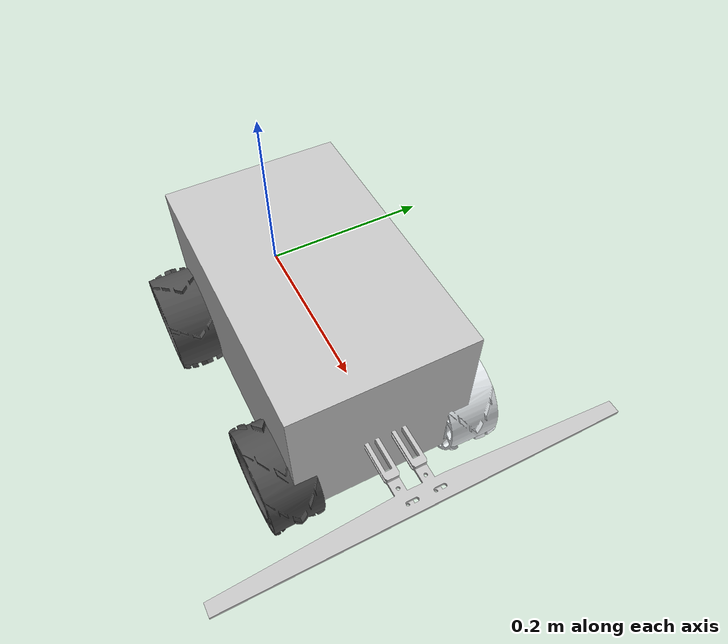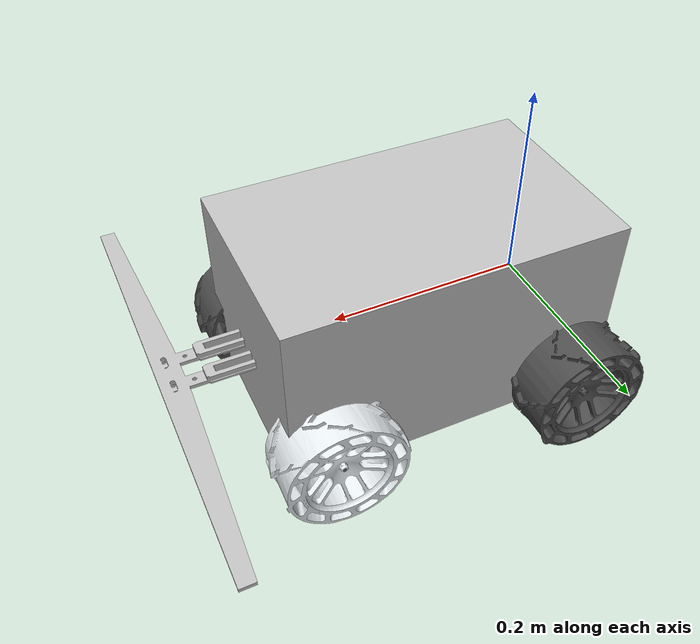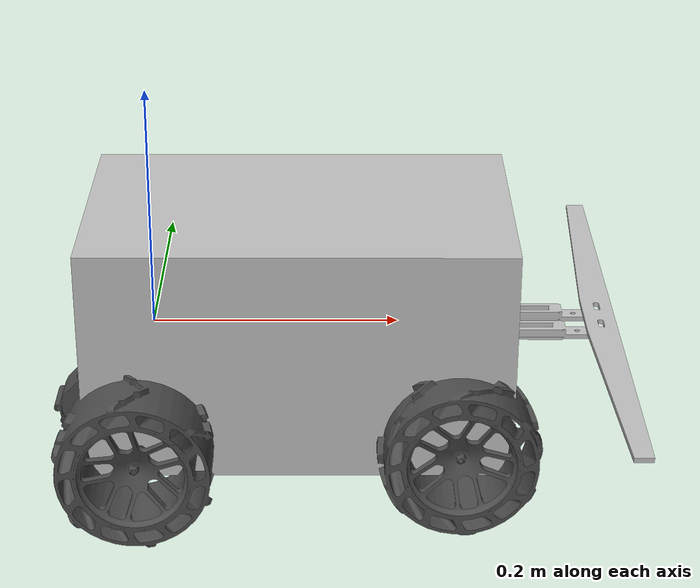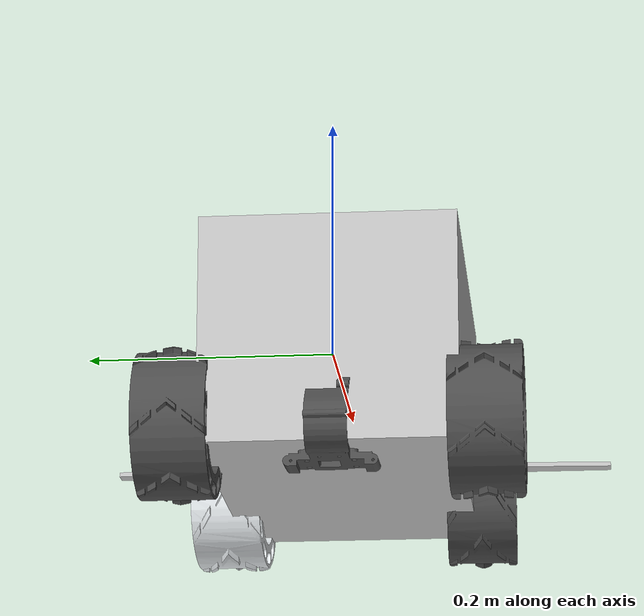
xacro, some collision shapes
<?xml version="1.0" encoding="utf-8"?>

<robot name="perse" xmlns:xacro="http://www.ros.org/wiki/xacro">

  <!-- Import all Gazebo-customization elements, including Gazebo colors -->
  <xacro:include filename="$(find perse_simulation)/models/Perse/urdf/perse.gazebo" />

  <!-- Import Rviz colors -->
  <xacro:include filename="$(find perse_simulation)/models/Perse/urdf/materials.xacro" />

  <!-- Code exported from SolidWorks -->
  <xacro:include filename="$(find perse_simulation)/models/Perse/urdf/perse.urdf" />

  <!-- Definition of motor -->
  <xacro:include filename="$(find perse_simulation)/models/Perse/urdf/motor.xacro"/>

  <xacro:include filename="$(find perse_simulation)/models/Perse/urdf/colors.xacro"/>

  <xacro:motor joint_name="wheel_back_left" gear_rate="1"/>
  <xacro:motor joint_name="wheel_back_right" gear_rate="1"/>
  <xacro:motor joint_name="wheel_front_left" gear_rate="1"/>
  <xacro:motor joint_name="wheel_front_right" gear_rate="1"/>

</robot>

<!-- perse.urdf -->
<robot name="perse">
  <link name="base_link">
    <inertial>
      <origin xyz="0.168983151004299 0.00691298433678258 0.000423190257476187" rpy="0 0 0" />
      <mass value="52.998755" />
      <inertia ixx="0.087169" ixy="0.001498" ixz="-2.541188e-6" iyy="0.593683" iyz="-1.130833e-10" izz="0.508637" />
    </inertial>
    <visual>
      <origin xyz="0 0 0" rpy="0 0 0" />
      <geometry>
        <mesh filename="file://$(find perse_simulation)/models/Perse/meshes/base_link.STL" />
      </geometry>
      <material name="">
        <color rgba="0.752941176470588 0.752941176470588 0.752941176470588 1" />
      </material>
    </visual>
    <collision>
      <origin xyz="0.12 0 0.01" rpy="0 0 0" />
      <geometry>
        <box size="0.34 0.21 0.19" />
      </geometry>
    </collision>
  </link>
  <link name="chasis_link">
    <inertial>
      <origin xyz="0.00923560336290369 -0.000156556443598481 -0.0793512912170262" rpy="0 0 0" />
      <mass value="68.721663" />
      <inertia ixx="0.029306" ixy="-5.110731e-5" ixz="0.003271" iyy="0.101034" iyz="5.112802e-5" izz="0.11519" />
    </inertial>
    <visual>
      <origin xyz="0 0 0" rpy="0 0 0" />
      <geometry>
        <mesh filename="file://$(find perse_simulation)/models/Perse/meshes/chasis_link.STL" />
      </geometry>
      <material name="">
        <color rgba="0.298039215686275 0.298039215686275 0.298039215686275 1" />
      </material>
    </visual>
  </link>
  <joint name="chasis_link" type="fixed">
    <origin xyz="0.11815 0 0.0167" rpy="0 0 0" />
    <parent link="base_link" />
    <child link="chasis_link" />
    <axis xyz="0 0 0" />
  </joint>
  <link name="wheel_front_left_link">
    <inertial>
      <origin xyz="-0.000671354037465849 -0.0288209896245741 -7.0635324950219E-09" rpy="0 0 0" />
      <mass value="44.780784" />
      <!-- Inertia values in scientific notation -->
      <inertia ixx="0.063252" ixy="8.844e-4" ixz="-1.1268e-8" iyy="0.101232" iyz="-3.6e-9" izz="0.063252" />
    </inertial>
    <visual>
      <origin xyz="0 0 0" rpy="0 0 0" />
      <geometry>
        <mesh filename="file://$(find perse_simulation)/models/Perse/meshes/wheel_front_left_link.STL" />
      </geometry>
      <material name="">
        <color rgba="0.898039215686275 0.917647058823529 0.929411764705882 1" />
      </material>
    </visual>
    <collision> <!--Changes colision blocks to a 0.06m cylinder-->
      <origin xyz="0 -0.03 0" rpy="1.5708 0 0" />
      <geometry>
        <cylinder length="0.06" radius="0.06"/>
      </geometry>
    </collision>
  </link>
  <joint name="wheel_front_left_joint" type="continuous">
    <origin xyz="0.12923 0.14061 -0.073983" rpy="0 0 0" /> <!-- Wheel with no inclination -->
    <parent link="chasis_link" />
    <child link="wheel_front_left_link" />
    <axis xyz="0 1 0" />
    <limit effort="20" velocity="100" />
    <dynamics damping="0.2" friction="0.01" />
  </joint>
  <link name="wheel_front_right_link">
    <inertial>
      <origin xyz="-0.000680674768011202 0.0288203993742683 -3.77309268551063E-09" rpy="0 0 0" />
      <mass value="44.779578" />
      <inertia ixx="0.063252" ixy="8.844e-4" ixz="-1.1268e-8" iyy="0.101232" iyz="-3.6e-9" izz="0.063252" />
    </inertial>
    <visual>
      <origin xyz="0 0 0" rpy="0 0 0" />
      <geometry>
        <mesh filename="file://$(find perse_simulation)/models/Perse/meshes/wheel_front_right_link.STL" />
      </geometry>
      <material name="">
        <color rgba="0.298039215686275 0.298039215686275 0.298039215686275 1" />
      </material>
    </visual>
    <collision> <!--Changes colision blocks to a 0.06m cylinder-->
      <origin xyz="0 0.03 0" rpy="1.5708 0 0" />
      <geometry>
        <cylinder length="0.06" radius="0.06"/>
      </geometry>
    </collision>
  </link>
  <joint name="wheel_front_right_joint" type="continuous">
    <origin xyz="0.12924 -0.14061 -0.073979" rpy="0 0 0" />
    <parent link="chasis_link" />
    <child link="wheel_front_right_link" />
    <axis xyz="0 1 0" />
    <limit effort="20" velocity="100" />
    <dynamics damping="0.2" friction="0.01" />
  </joint>
  <link name="wheel_back_right_link">
    <inertial>
      <origin xyz="-1.01586713260188E-09 0.0288209096412485 -2.07344974523238E-11" rpy="0 0 0" />
      <mass value="44.493944" />
      <inertia ixx="0.063252" ixy="8.844e-4" ixz="-1.1268e-8" iyy="0.101232" iyz="-3.6e-9" izz="0.063252" />
    </inertial>
    <visual>
      <origin xyz="0 0 0" rpy="0 0 0" />
      <geometry>
        <mesh filename="file://$(find perse_simulation)/models/Perse/meshes/wheel_back_right_link.STL" />
      </geometry>
      <material name="">
        <color rgba="0.298039215686275 0.298039215686275 0.298039215686275 1" />
      </material>
    </visual>
        <collision> <!--Changes colision blocks to a 0.06m cylinder-->
      <origin xyz="0 0.03 0" rpy="1.5708 0 0" />
      <geometry>
        <cylinder length="0.06" radius="0.06"/>
      </geometry>
    </collision>
  </link>
  <joint name="wheel_back_right_joint" type="continuous">
    <origin xyz="-0.12465 -0.15522 -0.075807" rpy="0 0 0" />
    <parent link="chasis_link" />
    <child link="wheel_back_right_link" />
    <axis xyz="0 1 0" />
    <limit effort="20" velocity="100" />
    <dynamics damping="0.2" friction="0.01" />
  </joint>
  <link name="wheel_back_left_link">
    <inertial>
      <origin xyz="8.13761188642181E-10 -0.0288212689411408 -4.82949791269505E-12" rpy="0 0 0" />
      <mass value="44.495096" />
      <inertia ixx="0.063252" ixy="8.844e-4" ixz="-1.1268e-8" iyy="0.101232" iyz="-3.6e-9" izz="0.063252" />
    </inertial>
    <visual>
      <origin xyz="0 0 0" rpy="0 0 0" />
      <geometry>
        <mesh filename="file://$(find perse_simulation)/models/Perse/meshes/wheel_back_left_link.STL" />
      </geometry>
      <material name="">
        <color rgba="0.298039215686275 0.298039215686275 0.298039215686275 1" />
      </material>
    </visual>
    <collision> <!--Changes colision blocks to a 0.06m cylinder-->
      <origin xyz="0 -0.03 0" rpy="1.5708 0 0" />
      <geometry>
        <cylinder length="0.06" radius="0.06"/>
      </geometry>
    </collision>
  </link>
  <joint name="wheel_back_left_joint" type="continuous">
    <origin xyz="-0.12391 0.15579 -0.075449" rpy="0 0 0" />
    <parent link="chasis_link" />
    <child link="wheel_back_left_link" />
    <axis xyz="0 1 0" />
    <limit effort="20" velocity="100" />
    <dynamics damping="0.2" friction="0.01" />
  </joint>
  <link name="bumper_link">
    <inertial>
      <origin xyz="-0.0197983251755962 -0.00205538293640049 -0.0030788567492823" rpy="0 0 0" />
      <mass value="11.13897" />
      <inertia ixx="0.095148" ixy="1.512861e-8" ixz="8.69104e-5" iyy="0.004666" iyz="6.197511e-10" izz="0.099741" />
    </inertial>
    <visual>
      <origin xyz="0 0 0" rpy="0 0 0" />
      <geometry>
        <mesh filename="file://$(find perse_simulation)/models/Perse/meshes/bumper_link.STL" />
      </geometry>
      <material name="">
        <color rgba="0.752941176470588 0.752941176470588 0.752941176470588 1" />
      </material>
    </visual>
    <collision>
      <origin xyz="0.005 0 -0.002" rpy="0 0 0" />
      <geometry>
        <box size="0.015 0.46 0.0038" />
      </geometry>
    </collision>
  </link>
  <joint name="bumper_joint" type="prismatic">
    <origin xyz="0.36665 0.0045747 0.0029" rpy="0 0 0" />
    <parent link="base_link" />
    <child link="bumper_link" />
    <axis xyz="-1 0 0" />
    <limit lower="0" upper="0.1" effort="0" velocity="0" />
  </joint>
  <link name="cover_link">
    <inertial>
      <origin xyz="-0.0174932276719462 -1.15666213528872E-07 0.0503519559153548" rpy="0 0 0" />
      <mass value="30.54501" />
      <inertia ixx="0.157821" ixy="1.66049e-7" ixz="-3.56891e-4" iyy="0.28044" iyz="8.372196e-8" izz="0.400301" />
    </inertial>
    <visual>
      <origin xyz="0 0 0" rpy="0 0 0" />
      <geometry>
        <mesh filename="file://$(find perse_simulation)/models/Perse/meshes/cover_link.STL" />
      </geometry>
      <material name="">
        <color rgba="0.909803921568627 0.443137254901961 0.0313725490196078 0.1" />
      </material>
    </visual>
    <collision>
      <origin xyz="0 0 0" rpy="0 0 0" />
      <geometry>
        <mesh filename="file://$(find perse_simulation)/models/Perse/meshes/cover_link.STL" />
      </geometry>
    </collision>
  </link>
  <joint name="cover_joint" type="fixed">
    <origin xyz="0.11815 0 0.0167" rpy="0 0 0" />
    <parent link="base_link" />
    <child link="cover_link" />
    <axis xyz="0 0 0" />
  </joint>
  <link name="cover_support_link">
    <inertial>
      <origin xyz="0.049477002584874 -2.56956833210732E-08 0.043432527903989" rpy="0 0 0" />
      <mass value="4.6497" />
      <inertia ixx="0.001328" ixy="-8.884012e-11" ixz="0.001848" iyy="0.013796" iyz="-2.784145e-11" izz="0.012518" />
    </inertial>
    <visual>
      <origin xyz="0 0 0" rpy="0 0 0" />
      <geometry>
        <mesh filename="file://$(find perse_simulation)/models/Perse/meshes/cover_support_link.STL" />
      </geometry>
      <material name="">
        <color rgba="0.898039215686275 0.917647058823529 0.929411764705882 1" />
      </material>
    </visual>
  </link>
  <joint name="cover_support_link" type="fixed">
    <origin xyz="0 0 0" rpy="0 0 0" />
    <parent link="cover_link" />
    <child link="cover_support_link" />
    <axis xyz="0 0 0" />
  </joint>
  <link name="batt_holder_link">
    <inertial>
      <origin xyz="-0.0057793262735638 1.94236729264319E-08 -0.0261493476257636" rpy="0 0 0" />
      <mass value="18.014159" />
      <inertia ixx="0.014903" ixy="9.875208e-9" ixz="-0.001669" iyy="0.059969" iyz="-8.66834e-10" izz="0.060661" />
    </inertial>
    <visual>
      <origin xyz="0 0 0" rpy="0 0 0" />
      <geometry>
        <mesh filename="file://$(find perse_simulation)/models/Perse/meshes/batt_holder_link.STL" />
      </geometry>
      <material name="">
        <color rgba="1 0 1 0.1" />
      </material>
    </visual>
  </link>
  <joint name="batt_holder_joint" type="fixed">
    <origin xyz="0.11815 0 0.0167" rpy="0 0 0" />
    <parent link="base_link" />
    <child link="batt_holder_link" />
    <axis xyz="0 0 0" />
  </joint>
  <link name="batt_link">
    <inertial>
      <origin xyz="-0.0133518675095092 0.0277219436805416 -0.0218779904778291" rpy="0 0 0" />
      <mass value="56.529535" />
      <inertia ixx="0.020673" ixy="3.903875e-9" ixz="1.048112e-4" iyy="0.113735" iyz="3.567367e-9" izz="0.104715" />
    </inertial>
    <visual>
      <origin xyz="0 0 0" rpy="0 0 0" />
      <geometry>
        <mesh filename="file://$(find perse_simulation)/models/Perse/meshes/batt_link.STL" />
      </geometry>
      <material name="">
        <color rgba="1 1 1 1" />
      </material>
    </visual>
  </link>
  <joint name="batt_joint" type="fixed">
    <origin xyz="0 0 0" rpy="0 0 0" />
    <parent link="batt_holder_link" />
    <child link="batt_link" />
    <axis xyz="0 0 0" />
  </joint>
  <link name="cam_holder_link">
    <inertial>
      <origin xyz="0.091640745696847 0.000134197552875963 0.0222842739273468" rpy="0 0 0" />
      <mass value="1.805546" />
      <inertia ixx="5.950341e-4" ixy="-1.729354e-9" ixz="4.874608e-5" iyy="6.577161e-4" iyz="-3.138385e-6" izz="7.141911e-4" />
    </inertial>
    <visual>
      <origin xyz="0 0 0" rpy="0 0 0" />
      <geometry>
        <mesh filename="file://$(find perse_simulation)/models/Perse/meshes/cam_holder_link.STL" />
      </geometry>
      <material name="">
        <color rgba="0.898039215686275 0.917647058823529 0.929411764705882 1" />
      </material>
    </visual>
  </link>
  <joint name="cam_holder_link" type="fixed">
    <origin xyz="0.11815 0 0.0167" rpy="0 0 0" />
    <parent link="base_link" />
    <child link="cam_holder_link" />
    <axis xyz="0 0 0" />
  </joint>
  <link name="cam_link">
    <inertial>
      <origin xyz="0.00483096666276736 6.86111208687612E-05 -0.0013263162285802" rpy="0 0 0" />
      <mass value="0.157507" />
      <inertia ixx="1.113832e-5" ixy="1.765945e-22" ixz="1.631984e-22" iyy="3.549749e-6" iyz="-8.201991e-8" izz="7.866862e-6" />
    </inertial>
    <visual>
      <origin xyz="0 0 0" rpy="0 0 0" />
      <geometry>
        <mesh filename="file://$(find perse_simulation)/models/Perse/meshes/cam_link.STL" />
      </geometry>
      <material name="">
        <color rgba="0.792156862745098 0.819607843137255 0.933333333333333 1" />
      </material>
    </visual>
  </link>
  <joint name="cam_joint" type="fixed">
    <origin xyz="0.0673562763621052 0 0.0709889192905058" rpy="0 0 0" />
    <parent link="cam_holder_link" />
    <child link="cam_link" />
    <axis xyz="0 0 0" />
  </joint>

  <link name="imu_link"></link>
  <joint name="imu_joint" type="fixed">
    <origin xyz="0.0673562763621052 0 0.0709889192905058" rpy="0 0 0" />
    <parent link="cam_holder_link" />
    <child link="imu_link" />
    <axis xyz="0 0 0" />
  </joint>

</robot>
